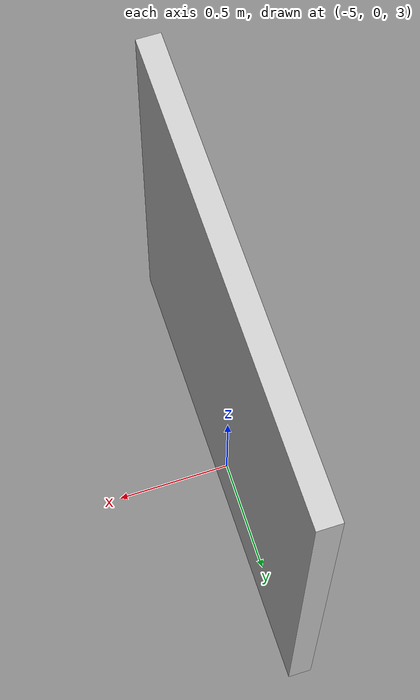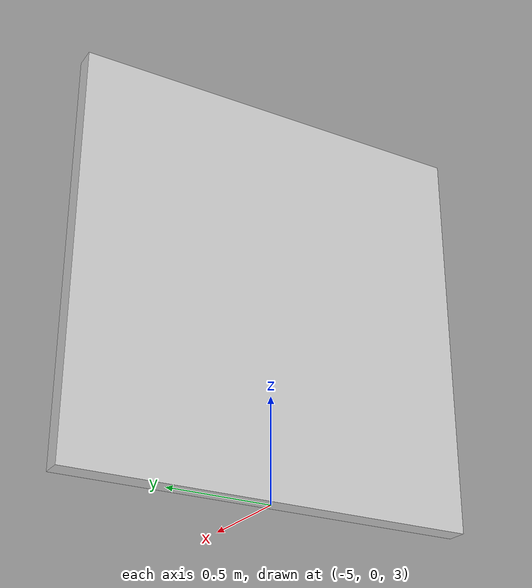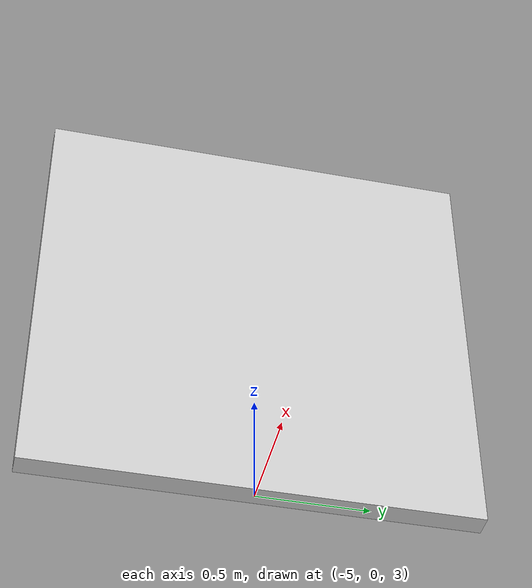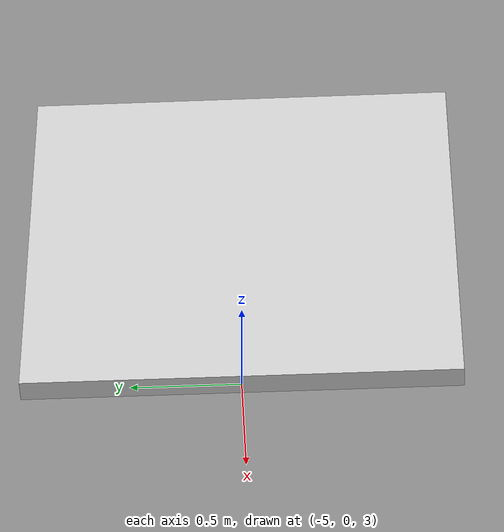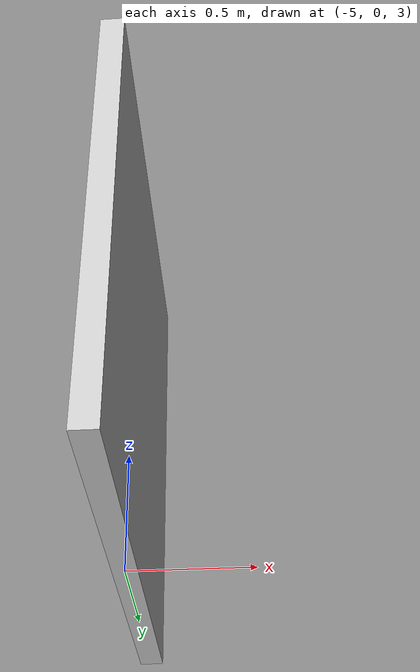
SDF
<sdf version='1.7'>
    <model name='south_wall3'>
        <static>true</static>
        <link name='link'>
            <collision name='collision'>
                <geometry>
                    <box>
                        <size>0.1 2 2</size>
                    </box>
                </geometry>
            </collision>
            <visual name='visual'>
                <geometry>
                    <box>
                        <size>0.1 2 2</size>
                    </box>
                </geometry>
                <material>
                    <diffuse>0.8 0.8 0.8 1</diffuse>
                    <script>
                        <uri>model://walls/wall1.material</uri>
                        <name>WallPaper1</name>
                    </script>
                </material>
            </visual>
        </link>
        <pose>-5 0 4 0 -0 0</pose>
    </model>
</sdf>
